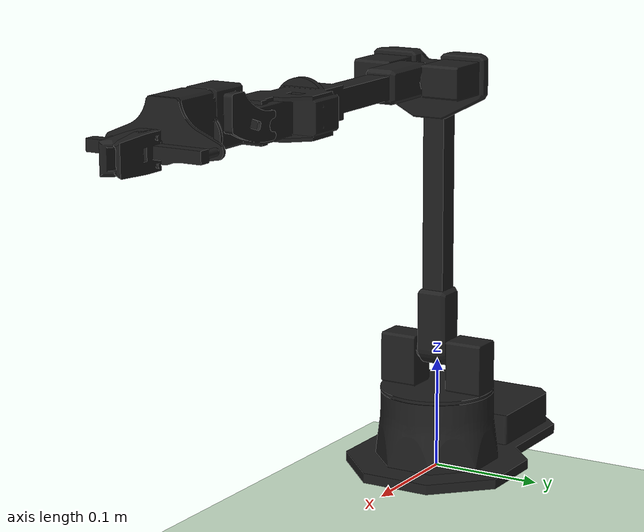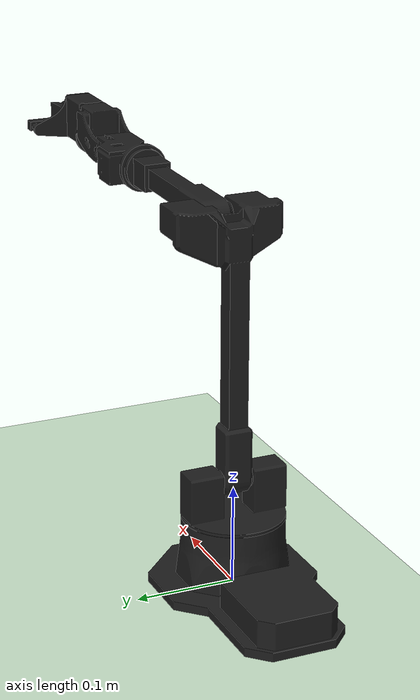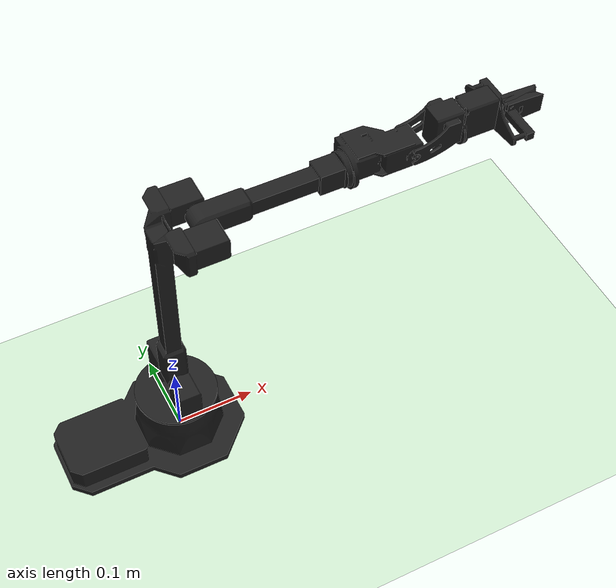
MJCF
<mujoco model="wx250s">
  <compiler angle="radian" meshdir="assets" texturedir="assets" autolimits="true"/>

  <option integrator="implicitfast" cone="elliptic" impratio="10"/>

  <asset>
    <texture type="2d" file="interbotix_black.png"/>
    <material name="black" texture="interbotix_black"/>

    <mesh file="wx250s_1_base.stl" class="wx250s"/>
    <mesh file="wx250s_2_shoulder.stl" class="wx250s"/>
    <mesh file="wx250s_3_upper_arm.stl" class="wx250s"/>
    <mesh file="wx250s_4_upper_forearm.stl" class="wx250s"/>
    <mesh file="wx250s_5_lower_forearm.stl" class="wx250s"/>
    <mesh file="wx250s_6_wrist.stl" class="wx250s"/>
    <mesh file="wx250s_7_gripper.stl" class="wx250s"/>
    <mesh file="wx250s_8_gripper_prop.stl" class="wx250s"/>
    <mesh file="wx250s_9_gripper_bar.stl" class="wx250s"/>
    <mesh file="wx250s_10_gripper_finger.stl" class="wx250s"/>

    <texture builtin="checker" height="100" name="texplane" rgb1="0 0 0" rgb2="0.8 0.8 0.8" type="2d" width="100"/>
    <material name="MatPlane" reflectance="0.5" shininess="1" specular="1" texrepeat="60 60" texture="texplane"/>
  </asset>

  <default>
    <default class="wx250s">
      <mesh scale="0.001 0.001 0.001"/>
      <joint axis="0 1 0" frictionloss="0.1" armature="0.1"/>
      <position inheritrange="1"  forcerange="-35 35"/>
      <default class="visual">
        <geom type="mesh" contype="0" conaffinity="0" density="0" group="2" material="black"/>
      </default>
      <default class="collision">
        <geom group="3" type="mesh"/>
        <default class="sphere_collision">
          <geom type="sphere" size="0.0006" rgba="1 0 0 1"/>
        </default>
      </default>
      <default class="nocollision">
        <geom group="3" type="mesh" conaffinity="0" contype="0"/>
      </default>
    </default>
  </default>

  <worldbody>
    <light cutoff="100" diffuse="1 1 1" dir="-0 0 -1.3" directional="true" exponent="1" pos="0 0 1.3" specular=".1 .1 .1"/>
    <geom conaffinity="1" condim="3" material="MatPlane" name="floor" pos="0 0 -0.1" rgba="0.8 0.9 0.8 1" size="40 40 40" type="plane"/>
    <geom conaffinity="0" contype="0" fromto="0 0 0 0 0 0.02" name="root" size=".011" type="capsule"/>
    <body name="wx250s/base_link" childclass="wx250s">
      <camera name="tracking" mode="fixed" pos="0 -2 2" xyaxes="1 0 0 0 1 1"/>
      <joint type="slide" stiffness="100" damping="100" frictionloss="0" armature="100"  range="-0.0001 0.0001" name="baseinertia"/>
      <inertial pos="-0.0380446 0.000613892 0.0193354" quat="0.509292 0.490887 -0.496359 0.503269" mass="0.538736"
        diaginertia="0.00252518 0.00211519 0.000690737"/>
      <geom quat="1 0 0 1" mesh="wx250s_1_base" class="visual"/>
      <geom quat="1 0 0 1" mesh="wx250s_1_base" class="collision"/>
      <body name="wx250s/shoulder_link" pos="0 0 0.072">
        <inertial pos="2.23482e-05 4.14609e-05 0.0066287" quat="0.0130352 0.706387 0.012996 0.707586" mass="0.480879"
          diaginertia="0.000588946 0.000555655 0.000378999"/>
        <joint name="waist" axis="0 0 1" range="-3.14158 3.14158"/>
        <geom pos="0 0 -0.003" quat="1 0 0 1" mesh="wx250s_2_shoulder" class="visual"/>
        <geom pos="0 0 -0.003" quat="1 0 0 1" mesh="wx250s_2_shoulder" class="collision"/>
        <body name="wx250s/upper_arm_link" pos="0 0 0.03865">
          <inertial pos="0.0171605 2.725e-07 0.191323" quat="0.705539 0.0470667 -0.0470667 0.705539" mass="0.430811"
            diaginertia="0.00364425 0.003463 0.000399348"/>
          <joint name="shoulder" range="-1.88496 1.98968"/>
          <geom quat="1 0 0 1" mesh="wx250s_3_upper_arm" class="visual"/>
          <geom quat="1 0 0 1" mesh="wx250s_3_upper_arm" class="nocollision"/>
          <body name="wx250s/upper_forearm_link" pos="0.04975 0 0.25">
            <inertial pos="0.107963 0.000115876 0" quat="0.000980829 0.707106 -0.000980829 0.707106" mass="0.234589"
              diaginertia="0.000888 0.000887807 3.97035e-05"/>
            <joint name="elbow" range="-2.14675 1.6057"/>
            <geom mesh="wx250s_4_upper_forearm" class="visual"/>
            <geom mesh="wx250s_4_upper_forearm" class="nocollision"/>
            <body name="wx250s/lower_forearm_link" pos="0.175 0 0">
              <inertial pos="0.0374395 0.00522252 0" quat="-0.0732511 0.703302 0.0732511 0.703302" mass="0.220991"
                diaginertia="0.0001834 0.000172527 5.88633e-05"/>
              <joint name="forearm_roll" axis="1 0 0" range="-3.14158 3.14158"/>
              <geom quat="0 1 0 0" mesh="wx250s_5_lower_forearm" class="visual"/>
              <geom quat="0 1 0 0" mesh="wx250s_5_lower_forearm" class="nocollision"/>
              <body name="wx250s/wrist_link" pos="0.075 0 0">
                <inertial pos="0.04236 -1.0663e-05 0.010577" quat="0.608721 0.363497 -0.359175 0.606895" mass="0.084957"
                  diaginertia="3.29057e-05 3.082e-05 2.68343e-05"/>
                <joint name="wrist_angle" axis="0 1 0" range="-1.74533 2.14675"/>
                <geom quat="1 0 0 1" mesh="wx250s_6_wrist" class="visual"/>
                <geom quat="1 0 0 1" mesh="wx250s_6_wrist" class="collision"/>
                <body name="wx250s/gripper_link" pos="0.065 0 0">
                  <inertial pos="0.0325296 4.2061e-07 0.0090959" quat="0.546081 0.419626 0.62801 0.362371"
                    mass="0.110084" diaginertia="0.00307592 0.00307326 0.0030332"/>
                  <joint name="wrist_rotate" axis="1 0 0" range="-3.14158 3.14158"/>
                  <geom pos="-0.02 0 0" quat="1 0 0 1" mesh="wx250s_7_gripper" class="visual"/>
                  <geom pos="-0.02 0 0" quat="1 0 0 1" mesh="wx250s_7_gripper" class="collision"/>
                  <geom pos="-0.02 0 0" quat="1 0 0 1" mesh="wx250s_9_gripper_bar" class="visual"/>
                  <geom pos="-0.02 0 0" quat="1 0 0 1" mesh="wx250s_9_gripper_bar" class="collision"/>
                  <body name="wx250s/left_finger_link" pos="0.066 0 0">
                    <inertial pos="0.013816 0 0" quat="0.705384 0.705384 -0.0493271 -0.0493271" mass="0.016246"
                      diaginertia="4.79509e-06 3.7467e-06 1.48651e-06"/>
                    <joint name="left_finger" axis="0 1 0" type="slide" range="0.015 0.037"/>
                    <geom pos="0 0.005 0" quat="0 0 0 -1" mesh="wx250s_10_gripper_finger" class="visual"/>
                    <geom pos="0 0.005 0" quat="0 0 0 -1" mesh="wx250s_10_gripper_finger" class="collision"/>
                    <geom name="left/left_g0" pos="0.042 -0.009 0.012" class="sphere_collision"/>
                    <geom name="left/left_g1" pos="0.042 -0.009 -0.012" class="sphere_collision"/>
                  </body>
                  <body name="wx250s/right_finger_link" pos="0.066 0 0">
                    <inertial pos="0.013816 0 0" quat="0.705384 0.705384 0.0493271 0.0493271" mass="0.016246"
                      diaginertia="4.79509e-06 3.7467e-06 1.48651e-06"/>
                    <joint name="right_finger" axis="0 1 0" type="slide" range="-0.037 -0.015"/>
                    <geom pos="0 -0.005 0" quat="0 0 1 0" mesh="wx250s_10_gripper_finger" class="visual"/>
                    <geom pos="0 -0.005 0" quat="0 0 1 0" mesh="wx250s_10_gripper_finger" class="collision"/>
                    <geom name="right/right_g0" pos="0.042 0.009 0.012" class="sphere_collision"/>
                    <geom name="right/right_g1" pos="0.042 0.009 -0.012" class="sphere_collision"/>
                  </body>
                </body>
              </body>
            </body>
          </body>
        </body>
      </body>
    </body>
    <body name="target" pos="0 0 0.01" gravcomp="1">
        <!-- The joint `ref` attributes are removed for brax. -->
        <joint armature="0" axis="1 0 0" damping="0" limited="true" name="target_x" pos="0 0 0" range="-.66 .66" stiffness="0" type="slide"/>
        <joint armature="0" axis="0 1 0" damping="0" limited="true" name="target_y" pos="0 0 0" range="-.66 .66" stiffness="0" type="slide"/>
        <joint armature="0" axis="0 0 1" damping="0" limited="true" name="target_z" pos="0 0 0" range="-.66 .66" stiffness="0" type="slide"/>
        <geom conaffinity="0" contype="0" name="target" pos="0 0 0" size=".009" type="sphere" rgba="0 1 0 1"/>
    </body>
  </worldbody>

  <contact>
    <exclude body1="wx250s/base_link" body2="wx250s/shoulder_link"/>
  </contact>

  <equality>
    <joint joint1="left_finger" joint2="right_finger" polycoef="0 -1 0 0 0"/>
  </equality>

  <actuator>
    <position   class="wx250s" name="waist" joint="waist"  kp="75" kv="5"/>
    <position   class="wx250s" name="shoulder" joint="shoulder"  kp="75" kv="5"/>
    <position   class="wx250s" name="elbow" joint="elbow"  kp="75" kv="5"/>
    <position   class="wx250s" name="forearm_roll" joint="forearm_roll"  kp="75" kv="5"/>
    <position   class="wx250s" name="wrist_angle" joint="wrist_angle"  kp="75" kv="5"/>
    <position   class="wx250s" name="wrist_rotate" joint="wrist_rotate"  kp="75" kv="5"/>
    <position   class="wx250s" name="gripper" joint="left_finger" kp="200" />
  </actuator>

</mujoco>
